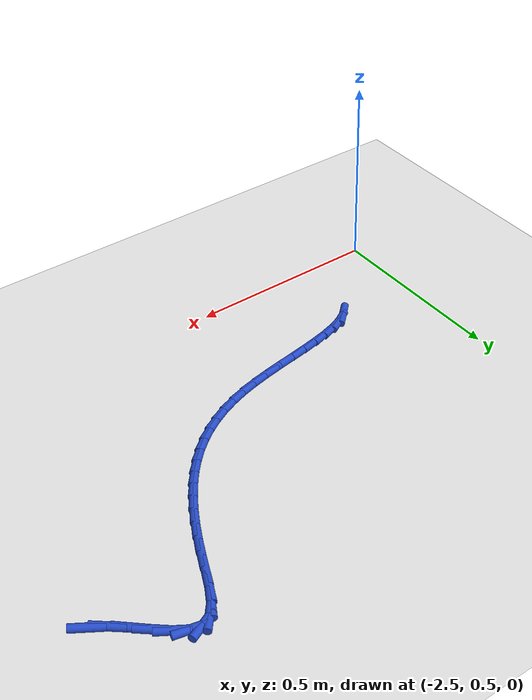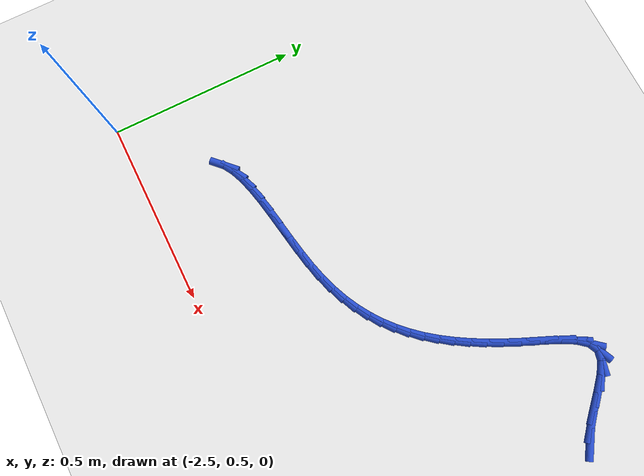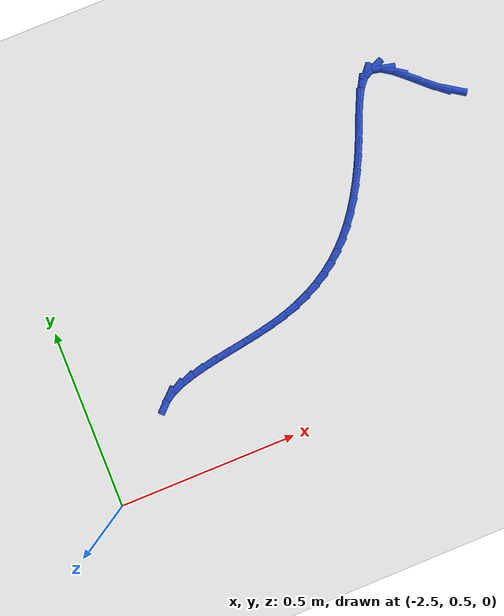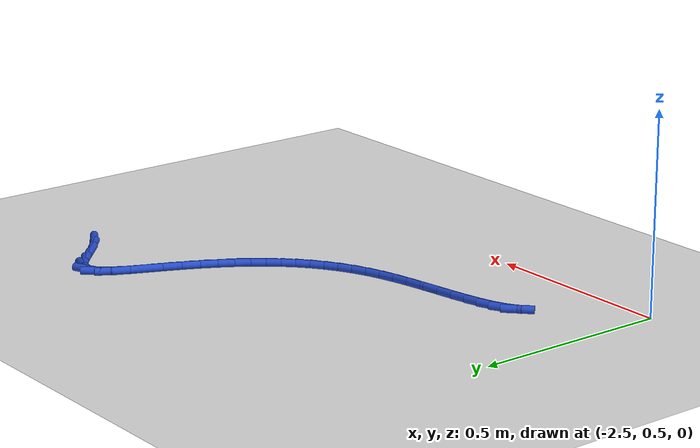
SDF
<sdf version="1.6">
 <world name="default">
  <model name="ground_plane">
   <static>1</static>
   <link name="link">
    <collision name="collision">
     <geometry><plane><normal>0 0 1</normal><size>100 100</size></plane></geometry>
     <surface><friction><ode><mu>100</mu><mu2>50</mu2></ode></friction></surface>
    </collision>
    <visual name="visual">
     <cast_shadows>0</cast_shadows>
     <geometry><plane><normal>0 0 1</normal><size>100 100</size></plane></geometry>
     <material>
      <script><uri>file://media/materials/scripts/gazebo.material</uri><name>Gazebo/WhiteGlow</name></script>
     </material>
    </visual>
   </link>
  </model>
  <model name="line">
   <link name="link_52">
    <pose>-1.2356085710387072 1.2131969345157547 0.01 0 1.57 -0.5828335361775304</pose>
    <collision name="collision">
     <geometry><cylinder><radius>0.01</radius><length>0.08</length></cylinder></geometry>
    </collision>
    <visual name="visual">
     <material>
      <script><name>Gazebo/Blue</name><uri>file://media/materials/scripts/gazebo.material</uri></script>
     </material>
     <geometry><cylinder><radius>0.01</radius><length>0.08</length></cylinder></geometry>
    </visual>
   </link>
   <link name="link_53">
    <pose>-1.2703774977852433 1.2361175084572775 0.01 0 1.57 -0.7101146643983015</pose>
    <collision name="collision">
     <geometry><cylinder><radius>0.01</radius><length>0.08</length></cylinder></geometry>
    </collision>
    <visual name="visual">
     <material>
      <script><name>Gazebo/Blue</name><uri>file://media/materials/scripts/gazebo.material</uri></script>
     </material>
     <geometry><cylinder><radius>0.01</radius><length>0.08</length></cylinder></geometry>
    </visual>
   </link>
   <link name="link_54">
    <pose>-1.304226719235444 1.2652186340190867 0.01 0 1.57 -0.7544499469010513</pose>
    <collision name="collision">
     <geometry><cylinder><radius>0.01</radius><length>0.08</length></cylinder></geometry>
    </collision>
    <visual name="visual">
     <material>
      <script><name>Gazebo/Blue</name><uri>file://media/materials/scripts/gazebo.material</uri></script>
     </material>
     <geometry><cylinder><radius>0.01</radius><length>0.08</length></cylinder></geometry>
    </visual>
   </link>
   <link name="link_55">
    <pose>-1.3367818515105183 1.295818604255986 0.01 0 1.57 -0.7230156452354544</pose>
    <collision name="collision">
     <geometry><cylinder><radius>0.01</radius><length>0.08</length></cylinder></geometry>
    </collision>
    <visual name="visual">
     <material>
      <script><name>Gazebo/Blue</name><uri>file://media/materials/scripts/gazebo.material</uri></script>
     </material>
     <geometry><cylinder><radius>0.01</radius><length>0.08</length></cylinder></geometry>
    </visual>
   </link>
   <link name="link_56">
    <pose>-1.3676586840603184 1.3230648613326654 0.01 0 1.57 -0.5839175451651349</pose>
    <collision name="collision">
     <geometry><cylinder><radius>0.01</radius><length>0.08</length></cylinder></geometry>
    </collision>
    <visual name="visual">
     <material>
      <script><name>Gazebo/Blue</name><uri>file://media/materials/scripts/gazebo.material</uri></script>
     </material>
     <geometry><cylinder><radius>0.01</radius><length>0.08</length></cylinder></geometry>
    </visual>
   </link>
   <link name="link_57">
    <pose>-1.3964730063346962 1.342104847413813 0.01 0 1.57 -0.22306258374148705</pose>
    <collision name="collision">
     <geometry><cylinder><radius>0.01</radius><length>0.08</length></cylinder></geometry>
    </collision>
    <visual name="visual">
     <material>
      <script><name>Gazebo/Blue</name><uri>file://media/materials/scripts/gazebo.material</uri></script>
     </material>
     <geometry><cylinder><radius>0.01</radius><length>0.08</length></cylinder></geometry>
    </visual>
   </link>
   <link name="link_58">
    <pose>-1.4228406077835043 1.3480860046641199 0.01 0 1.57 0.430712198860181</pose>
    <collision name="collision">
     <geometry><cylinder><radius>0.01</radius><length>0.08</length></cylinder></geometry>
    </collision>
    <visual name="visual">
     <material>
      <script><name>Gazebo/Blue</name><uri>file://media/materials/scripts/gazebo.material</uri></script>
     </material>
     <geometry><cylinder><radius>0.01</radius><length>0.08</length></cylinder></geometry>
    </visual>
   </link>
   <link name="link_59">
    <pose>-1.4464993081471151 1.337215226870837 0.01 0 1.57 0.8729669830696112</pose>
    <collision name="collision">
     <geometry><cylinder><radius>0.01</radius><length>0.08</length></cylinder></geometry>
    </collision>
    <visual name="visual">
     <material>
      <script><name>Gazebo/Blue</name><uri>file://media/materials/scripts/gazebo.material</uri></script>
     </material>
     <geometry><cylinder><radius>0.01</radius><length>0.08</length></cylinder></geometry>
    </visual>
   </link>
   <link name="link_60">
    <pose>-1.4678802511396374 1.3117187592937494 0.01 0 1.57 1.0657281998502035</pose>
    <collision name="collision">
     <geometry><cylinder><radius>0.01</radius><length>0.08</length></cylinder></geometry>
    </collision>
    <visual name="visual">
     <material>
      <script><name>Gazebo/Blue</name><uri>file://media/materials/scripts/gazebo.material</uri></script>
     </material>
     <geometry><cylinder><radius>0.01</radius><length>0.08</length></cylinder></geometry>
    </visual>
   </link>
   <link name="link_61">
    <pose>-1.4876591190119548 1.2759458999892876 0.01 0 1.57 1.146171779118305</pose>
    <collision name="collision">
     <geometry><cylinder><radius>0.01</radius><length>0.08</length></cylinder></geometry>
    </collision>
    <visual name="visual">
     <material>
      <script><name>Gazebo/Blue</name><uri>file://media/materials/scripts/gazebo.material</uri></script>
     </material>
     <geometry><cylinder><radius>0.01</radius><length>0.08</length></cylinder></geometry>
    </visual>
   </link>
   <link name="link_62">
    <pose>-1.5065118703647598 1.234248346248146 0.01 0 1.57 1.1647811419523861</pose>
    <collision name="collision">
     <geometry><cylinder><radius>0.01</radius><length>0.08</length></cylinder></geometry>
    </collision>
    <visual name="visual">
     <material>
      <script><name>Gazebo/Blue</name><uri>file://media/materials/scripts/gazebo.material</uri></script>
     </material>
     <geometry><cylinder><radius>0.01</radius><length>0.08</length></cylinder></geometry>
    </visual>
   </link>
   <link name="link_63">
    <pose>-1.525114354740891 1.1909768733549864 0.01 0 1.57 1.1430470830943131</pose>
    <collision name="collision">
     <geometry><cylinder><radius>0.01</radius><length>0.08</length></cylinder></geometry>
    </collision>
    <visual name="visual">
     <material>
      <script><name>Gazebo/Blue</name><uri>file://media/materials/scripts/gazebo.material</uri></script>
     </material>
     <geometry><cylinder><radius>0.01</radius><length>0.08</length></cylinder></geometry>
    </visual>
   </link>
   <link name="link_64">
    <pose>-1.5440257036756722 1.149495489452441 0.01 0 1.57 1.1103010484580846</pose>
    <collision name="collision">
     <geometry><cylinder><radius>0.01</radius><length>0.08</length></cylinder></geometry>
    </collision>
    <visual name="visual">
     <material>
      <script><name>Gazebo/Blue</name><uri>file://media/materials/scripts/gazebo.material</uri></script>
     </material>
     <geometry><cylinder><radius>0.01</radius><length>0.08</length></cylinder></geometry>
    </visual>
   </link>
   <link name="link_65">
    <pose>-1.5634664538354153 1.110305625619717 0.01 0 1.57 1.0715488552188424</pose>
    <collision name="collision">
     <geometry><cylinder><radius>0.01</radius><length>0.08</length></cylinder></geometry>
    </collision>
    <visual name="visual">
     <material>
      <script><name>Gazebo/Blue</name><uri>file://media/materials/scripts/gazebo.material</uri></script>
     </material>
     <geometry><cylinder><radius>0.01</radius><length>0.08</length></cylinder></geometry>
    </visual>
   </link>
   <link name="link_66">
    <pose>-1.583596091474342 1.0733925754355589 0.01 0 1.57 1.0264087159504258</pose>
    <collision name="collision">
     <geometry><cylinder><radius>0.01</radius><length>0.08</length></cylinder></geometry>
    </collision>
    <visual name="visual">
     <material>
      <script><name>Gazebo/Blue</name><uri>file://media/materials/scripts/gazebo.material</uri></script>
     </material>
     <geometry><cylinder><radius>0.01</radius><length>0.08</length></cylinder></geometry>
    </visual>
   </link>
   <link name="link_67">
    <pose>-1.6045741028466738 1.0387416324787127 0.01 0 1.57 0.9746446581970213</pose>
    <collision name="collision">
     <geometry><cylinder><radius>0.01</radius><length>0.08</length></cylinder></geometry>
    </collision>
    <visual name="visual">
     <material>
      <script><name>Gazebo/Blue</name><uri>file://media/materials/scripts/gazebo.material</uri></script>
     </material>
     <geometry><cylinder><radius>0.01</radius><length>0.08</length></cylinder></geometry>
    </visual>
   </link>
   <link name="link_68">
    <pose>-1.6265599742066326 1.0063380903279235 0.01 0 1.57 0.9162496301693195</pose>
    <collision name="collision">
     <geometry><cylinder><radius>0.01</radius><length>0.08</length></cylinder></geometry>
    </collision>
    <visual name="visual">
     <material>
      <script><name>Gazebo/Blue</name><uri>file://media/materials/scripts/gazebo.material</uri></script>
     </material>
     <geometry><cylinder><radius>0.01</radius><length>0.08</length></cylinder></geometry>
    </visual>
   </link>
   <link name="link_69">
    <pose>-1.6497131918084393 0.9761672425619358 0.01 0 1.57 0.851534961629581</pose>
    <collision name="collision">
     <geometry><cylinder><radius>0.01</radius><length>0.08</length></cylinder></geometry>
    </collision>
    <visual name="visual">
     <material>
      <script><name>Gazebo/Blue</name><uri>file://media/materials/scripts/gazebo.material</uri></script>
     </material>
     <geometry><cylinder><radius>0.01</radius><length>0.08</length></cylinder></geometry>
    </visual>
   </link>
   <link name="link_70">
    <pose>-1.6741932419063168 0.9482143827594958 0.01 0 1.57 0.7812062394298878</pose>
    <collision name="collision">
     <geometry><cylinder><radius>0.01</radius><length>0.08</length></cylinder></geometry>
    </collision>
    <visual name="visual">
     <material>
      <script><name>Gazebo/Blue</name><uri>file://media/materials/scripts/gazebo.material</uri></script>
     </material>
     <geometry><cylinder><radius>0.01</radius><length>0.08</length></cylinder></geometry>
    </visual>
   </link>
   <link name="link_71">
    <pose>-1.7001596107544854 0.9224648044993482 0.01 0 1.57 0.7063970261942405</pose>
    <collision name="collision">
     <geometry><cylinder><radius>0.01</radius><length>0.08</length></cylinder></geometry>
    </collision>
    <visual name="visual">
     <material>
      <script><name>Gazebo/Blue</name><uri>file://media/materials/scripts/gazebo.material</uri></script>
     </material>
     <geometry><cylinder><radius>0.01</radius><length>0.08</length></cylinder></geometry>
    </visual>
   </link>
   <link name="link_72">
    <pose>-1.727771784607168 0.8989038013602382 0.01 0 1.57 0.6286320579274024</pose>
    <collision name="collision">
     <geometry><cylinder><radius>0.01</radius><length>0.08</length></cylinder></geometry>
    </collision>
    <visual name="visual">
     <material>
      <script><name>Gazebo/Blue</name><uri>file://media/materials/scripts/gazebo.material</uri></script>
     </material>
     <geometry><cylinder><radius>0.01</radius><length>0.08</length></cylinder></geometry>
    </visual>
   </link>
   <link name="link_73">
    <pose>-1.7571892497185857 0.8775166669209103 0.01 0 1.57 0.5497071091050244</pose>
    <collision name="collision">
     <geometry><cylinder><radius>0.01</radius><length>0.08</length></cylinder></geometry>
    </collision>
    <visual name="visual">
     <material>
      <script><name>Gazebo/Blue</name><uri>file://media/materials/scripts/gazebo.material</uri></script>
     </material>
     <geometry><cylinder><radius>0.01</radius><length>0.08</length></cylinder></geometry>
    </visual>
   </link>
   <link name="link_74">
    <pose>-1.7885714923429603 0.8582886947601113 0.01 0 1.57 0.47150182891055975</pose>
    <collision name="collision">
     <geometry><cylinder><radius>0.01</radius><length>0.08</length></cylinder></geometry>
    </collision>
    <visual name="visual">
     <material>
      <script><name>Gazebo/Blue</name><uri>file://media/materials/scripts/gazebo.material</uri></script>
     </material>
     <geometry><cylinder><radius>0.01</radius><length>0.08</length></cylinder></geometry>
    </visual>
   </link>
   <link name="link_75">
    <pose>-1.8220779987345135 0.841205178456585 0.01 0 1.57 0.39577063048852296</pose>
    <collision name="collision">
     <geometry><cylinder><radius>0.01</radius><length>0.08</length></cylinder></geometry>
    </collision>
    <visual name="visual">
     <material>
      <script><name>Gazebo/Blue</name><uri>file://media/materials/scripts/gazebo.material</uri></script>
     </material>
     <geometry><cylinder><radius>0.01</radius><length>0.08</length></cylinder></geometry>
    </visual>
   </link>
   <link name="link_76">
    <pose>-1.857868255147467 0.8262514115890771 0.01 0 1.57 0.3239669584710281</pose>
    <collision name="collision">
     <geometry><cylinder><radius>0.01</radius><length>0.08</length></cylinder></geometry>
    </collision>
    <visual name="visual">
     <material>
      <script><name>Gazebo/Blue</name><uri>file://media/materials/scripts/gazebo.material</uri></script>
     </material>
     <geometry><cylinder><radius>0.01</radius><length>0.08</length></cylinder></geometry>
    </visual>
   </link>
   <link name="link_77">
    <pose>-1.8961017478360418 0.8134126877363329 0.01 0 1.57 0.2581279239047877</pose>
    <collision name="collision">
     <geometry><cylinder><radius>0.01</radius><length>0.08</length></cylinder></geometry>
    </collision>
    <visual name="visual">
     <material>
      <script><name>Gazebo/Blue</name><uri>file://media/materials/scripts/gazebo.material</uri></script>
     </material>
     <geometry><cylinder><radius>0.01</radius><length>0.08</length></cylinder></geometry>
    </visual>
   </link>
   <link name="link_78">
    <pose>-1.9368803018167802 0.8026464163270444 0.01 0 1.57 0.20832052276798002</pose>
    <collision name="collision">
     <geometry><cylinder><radius>0.01</radius><length>0.08</length></cylinder></geometry>
    </collision>
    <visual name="visual">
     <material>
      <script><name>Gazebo/Blue</name><uri>file://media/materials/scripts/gazebo.material</uri></script>
     </material>
     <geometry><cylinder><radius>0.01</radius><length>0.08</length></cylinder></geometry>
    </visual>
   </link>
   <link name="link_79">
    <pose>-1.9796680528009285 0.7936016293600817 0.01 0 1.57 0.1774379817396661</pose>
    <collision name="collision">
     <geometry><cylinder><radius>0.01</radius><length>0.08</length></cylinder></geometry>
    </collision>
    <visual name="visual">
     <material>
      <script><name>Gazebo/Blue</name><uri>file://media/materials/scripts/gazebo.material</uri></script>
     </material>
     <geometry><cylinder><radius>0.01</radius><length>0.08</length></cylinder></geometry>
    </visual>
   </link>
   <link name="link_80">
    <pose>-2.0235327027601033 0.785735649146375 0.01 0 1.57 0.16291139769140037</pose>
    <collision name="collision">
     <geometry><cylinder><radius>0.01</radius><length>0.08</length></cylinder></geometry>
    </collision>
    <visual name="visual">
     <material>
      <script><name>Gazebo/Blue</name><uri>file://media/materials/scripts/gazebo.material</uri></script>
     </material>
     <geometry><cylinder><radius>0.01</radius><length>0.08</length></cylinder></geometry>
    </visual>
   </link>
   <link name="link_81">
    <pose>-2.0675359879318287 0.778502913053149 0.01 0 1.57 0.16389728808420845</pose>
    <collision name="collision">
     <geometry><cylinder><radius>0.01</radius><length>0.08</length></cylinder></geometry>
    </collision>
    <visual name="visual">
     <material>
      <script><name>Gazebo/Blue</name><uri>file://media/materials/scripts/gazebo.material</uri></script>
     </material>
     <geometry><cylinder><radius>0.01</radius><length>0.08</length></cylinder></geometry>
    </visual>
   </link>
   <link name="link_82">
    <pose>-2.11073964455363 0.7713578584476293 0.01 0 1.57 0.18134028228761104</pose>
    <collision name="collision">
     <geometry><cylinder><radius>0.01</radius><length>0.08</length></cylinder></geometry>
    </collision>
    <visual name="visual">
     <material>
      <script><name>Gazebo/Blue</name><uri>file://media/materials/scripts/gazebo.material</uri></script>
     </material>
     <geometry><cylinder><radius>0.01</radius><length>0.08</length></cylinder></geometry>
    </visual>
   </link>
   <link name="link_83">
    <pose>-2.15220540886303 0.763754922697041 0.01 0 1.57 0.21833644706511002</pose>
    <collision name="collision">
     <geometry><cylinder><radius>0.01</radius><length>0.08</length></cylinder></geometry>
    </collision>
    <visual name="visual">
     <material>
      <script><name>Gazebo/Blue</name><uri>file://media/materials/scripts/gazebo.material</uri></script>
     </material>
     <geometry><cylinder><radius>0.01</radius><length>0.08</length></cylinder></geometry>
    </visual>
   </link>
   <link name="link_84">
    <pose>-2.1909950170975536 0.7551485431686101 0.01 0 1.57 0.28106596404879264</pose>
    <collision name="collision">
     <geometry><cylinder><radius>0.01</radius><length>0.08</length></cylinder></geometry>
    </collision>
    <visual name="visual">
     <material>
      <script><name>Gazebo/Blue</name><uri>file://media/materials/scripts/gazebo.material</uri></script>
     </material>
     <geometry><cylinder><radius>0.01</radius><length>0.08</length></cylinder></geometry>
    </visual>
   </link>
   <link name="link_85">
    <pose>-2.226170205494726 0.7449931572295615 0.01 0 1.57 0.38053320697671855</pose>
    <collision name="collision">
     <geometry><cylinder><radius>0.01</radius><length>0.08</length></cylinder></geometry>
    </collision>
    <visual name="visual">
     <material>
      <script><name>Gazebo/Blue</name><uri>file://media/materials/scripts/gazebo.material</uri></script>
     </material>
     <geometry><cylinder><radius>0.01</radius><length>0.08</length></cylinder></geometry>
    </visual>
   </link>
   <link name="link_86">
    <pose>-2.256792710292071 0.7327432022471212 0.01 0 1.57 0.5348759074491909</pose>
    <collision name="collision">
     <geometry><cylinder><radius>0.01</radius><length>0.08</length></cylinder></geometry>
    </collision>
    <visual name="visual">
     <material>
      <script><name>Gazebo/Blue</name><uri>file://media/materials/scripts/gazebo.material</uri></script>
     </material>
     <geometry><cylinder><radius>0.01</radius><length>0.08</length></cylinder></geometry>
    </visual>
   </link>
   <link name="link_87">
    <pose>-2.2819242677271125 0.7178531155885143 0.01 0 1.57 0.768363453311457</pose>
    <collision name="collision">
     <geometry><cylinder><radius>0.01</radius><length>0.08</length></cylinder></geometry>
    </collision>
    <visual name="visual">
     <material>
      <script><name>Gazebo/Blue</name><uri>file://media/materials/scripts/gazebo.material</uri></script>
     </material>
     <geometry><cylinder><radius>0.01</radius><length>0.08</length></cylinder></geometry>
    </visual>
   </link>
  </model>
 </world>
</sdf>
